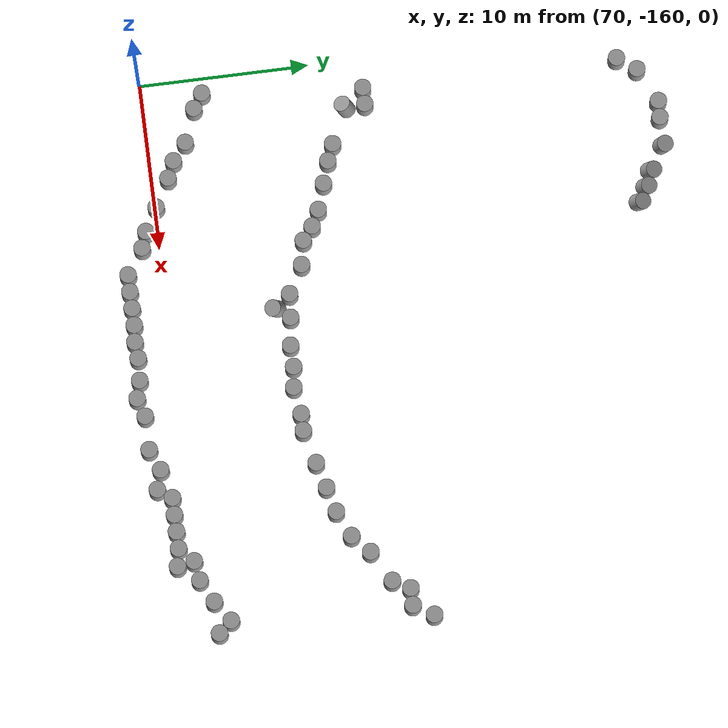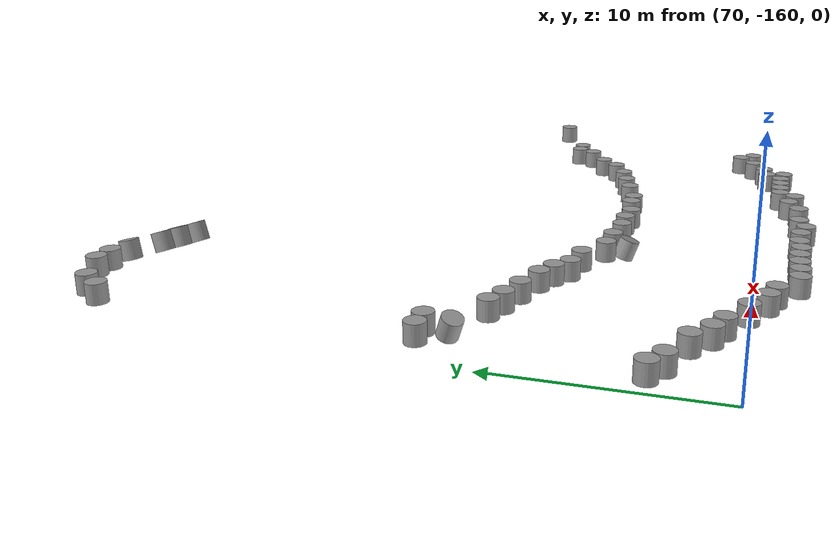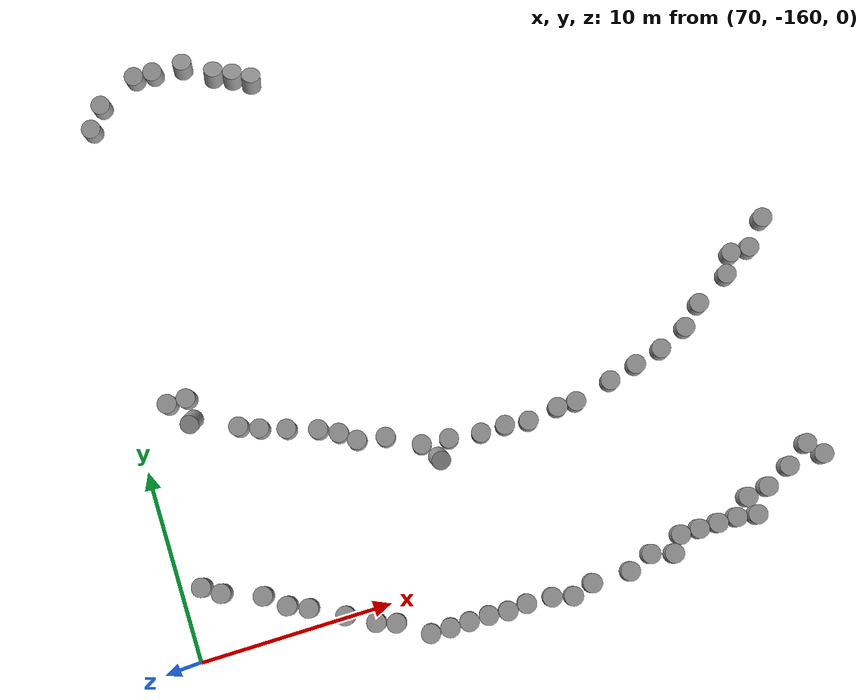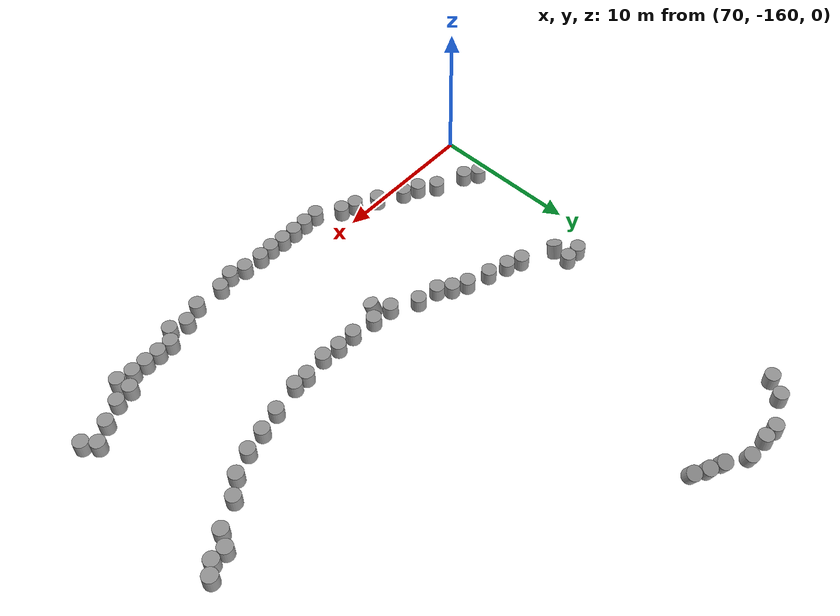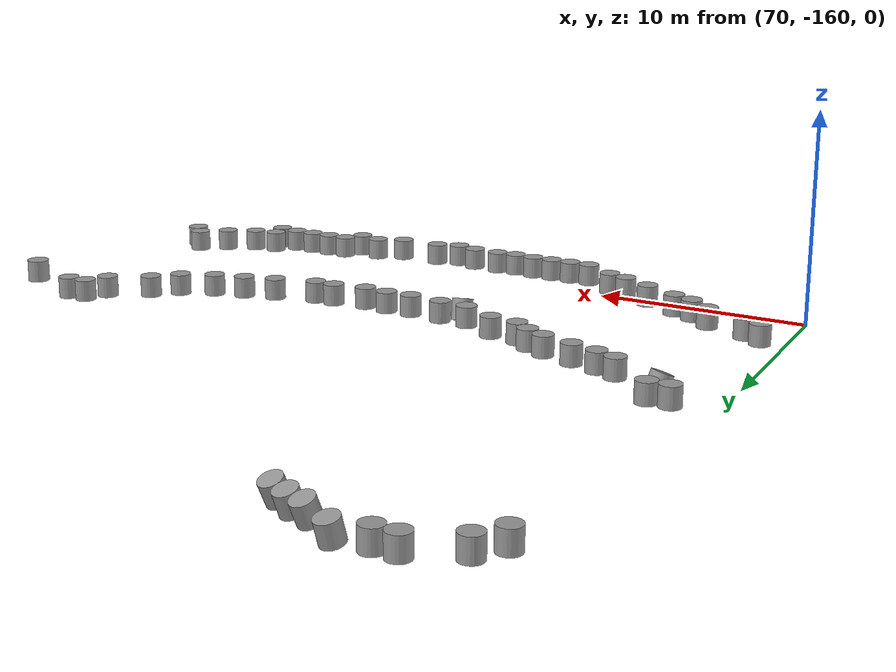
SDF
<sdf version="1.7">
 <world name="default">
  <model name="unit_cylinder_85_clone_244_clone_869">
   <pose>103.887 -146.875 1.45093 -0.001001 -6.3e-05 0.077577</pose>
   <link name="link">
    <inertial>
     <mass>1</mass>
     <inertia><ixx>0.145833</ixx><ixy>0</ixy><ixz>0</ixz><iyy>0.145833</iyy><iyz>0</iyz><izz>0.125</izz></inertia>
    </inertial>
    <collision name="collision">
     <geometry><cylinder><radius>0.5</radius><length>1</length></cylinder></geometry>
    </collision>
    <visual name="visual">
     <geometry><cylinder><radius>0.5</radius><length>1</length></cylinder></geometry>
     <material>
      <script><name>Gazebo/Grey</name><uri>file://media/materials/scripts/gazebo.material</uri></script>
     </material>
    </visual>
   </link>
  </model>
  <model name="unit_cylinder_85_clone_244_clone_871">
   <pose>103.002 -147.998 0.451267 -2.9e-05 -2.7e-05 -0.004593</pose>
   <link name="link">
    <inertial>
     <mass>1</mass>
     <inertia><ixx>0.145833</ixx><ixy>0</ixy><ixz>0</ixz><iyy>0.145833</iyy><iyz>0</iyz><izz>0.125</izz></inertia>
    </inertial>
    <collision name="collision">
     <geometry><cylinder><radius>0.5</radius><length>1</length></cylinder></geometry>
    </collision>
    <visual name="visual">
     <geometry><cylinder><radius>0.5</radius><length>1</length></cylinder></geometry>
     <material>
      <script><name>Gazebo/Grey</name><uri>file://media/materials/scripts/gazebo.material</uri></script>
     </material>
    </visual>
   </link>
  </model>
  <model name="unit_cylinder_85_clone_244_clone_872">
   <pose>102.002 -148 0.450004 -2e-06 -2.7e-05 0.000412</pose>
   <link name="link">
    <inertial>
     <mass>1</mass>
     <inertia><ixx>0.145833</ixx><ixy>0</ixy><ixz>0</ixz><iyy>0.145833</iyy><iyz>0</iyz><izz>0.125</izz></inertia>
    </inertial>
    <collision name="collision">
     <geometry><cylinder><radius>0.5</radius><length>1</length></cylinder></geometry>
    </collision>
    <visual name="visual">
     <geometry><cylinder><radius>0.5</radius><length>1</length></cylinder></geometry>
     <material>
      <script><name>Gazebo/Grey</name><uri>file://media/materials/scripts/gazebo.material</uri></script>
     </material>
    </visual>
   </link>
  </model>
  <model name="unit_cylinder_85_clone_244_clone_873">
   <pose>101.434 -148.999 0.450763 -0.001235 -0.000899 0.000613</pose>
   <link name="link">
    <inertial>
     <mass>1</mass>
     <inertia><ixx>0.145833</ixx><ixy>0</ixy><ixz>0</ixz><iyy>0.145833</iyy><iyz>0</iyz><izz>0.125</izz></inertia>
    </inertial>
    <collision name="collision">
     <geometry><cylinder><radius>0.5</radius><length>1</length></cylinder></geometry>
    </collision>
    <visual name="visual">
     <geometry><cylinder><radius>0.5</radius><length>1</length></cylinder></geometry>
     <material>
      <script><name>Gazebo/Grey</name><uri>file://media/materials/scripts/gazebo.material</uri></script>
     </material>
    </visual>
   </link>
  </model>
  <model name="unit_cylinder_85_clone_244_clone_874">
   <pose>99.5975 -150.025 0.45069 -0.001188 -0.000704 0.00096</pose>
   <link name="link">
    <inertial>
     <mass>1</mass>
     <inertia><ixx>0.145833</ixx><ixy>0</ixy><ixz>0</ixz><iyy>0.145833</iyy><iyz>0</iyz><izz>0.125</izz></inertia>
    </inertial>
    <collision name="collision">
     <geometry><cylinder><radius>0.5</radius><length>1</length></cylinder></geometry>
    </collision>
    <visual name="visual">
     <geometry><cylinder><radius>0.5</radius><length>1</length></cylinder></geometry>
     <material>
      <script><name>Gazebo/Grey</name><uri>file://media/materials/scripts/gazebo.material</uri></script>
     </material>
    </visual>
   </link>
  </model>
  <model name="unit_cylinder_85_clone_244_clone_875">
   <pose>98.5288 -150.999 0.45101 -0.00174 -0.001029 0.000534</pose>
   <link name="link">
    <inertial>
     <mass>1</mass>
     <inertia><ixx>0.145833</ixx><ixy>0</ixy><ixz>0</ixz><iyy>0.145833</iyy><iyz>0</iyz><izz>0.125</izz></inertia>
    </inertial>
    <collision name="collision">
     <geometry><cylinder><radius>0.5</radius><length>1</length></cylinder></geometry>
    </collision>
    <visual name="visual">
     <geometry><cylinder><radius>0.5</radius><length>1</length></cylinder></geometry>
     <material>
      <script><name>Gazebo/Grey</name><uri>file://media/materials/scripts/gazebo.material</uri></script>
     </material>
    </visual>
   </link>
  </model>
  <model name="unit_cylinder_85_clone_244_clone_876">
   <pose>96.992 -151.696 0.450783 -0.001368 -0.000791 0.001602</pose>
   <link name="link">
    <inertial>
     <mass>1</mass>
     <inertia><ixx>0.145833</ixx><ixy>0</ixy><ixz>0</ixz><iyy>0.145833</iyy><iyz>0</iyz><izz>0.125</izz></inertia>
    </inertial>
    <collision name="collision">
     <geometry><cylinder><radius>0.5</radius><length>1</length></cylinder></geometry>
    </collision>
    <visual name="visual">
     <geometry><cylinder><radius>0.5</radius><length>1</length></cylinder></geometry>
     <material>
      <script><name>Gazebo/Grey</name><uri>file://media/materials/scripts/gazebo.material</uri></script>
     </material>
    </visual>
   </link>
  </model>
  <model name="unit_cylinder_85_clone_244_clone_896">
   <pose>103.225 -159.247 0.450878 0.000282 0.000134 0.057715</pose>
   <link name="link">
    <inertial>
     <mass>1</mass>
     <inertia><ixx>0.145833</ixx><ixy>0</ixy><ixz>0</ixz><iyy>0.145833</iyy><iyz>0</iyz><izz>0.125</izz></inertia>
    </inertial>
    <collision name="collision">
     <geometry><cylinder><radius>0.5</radius><length>1</length></cylinder></geometry>
    </collision>
    <visual name="visual">
     <geometry><cylinder><radius>0.5</radius><length>1</length></cylinder></geometry>
     <material>
      <script><name>Gazebo/Grey</name><uri>file://media/materials/scripts/gazebo.material</uri></script>
     </material>
    </visual>
   </link>
  </model>
  <model name="unit_cylinder_85_clone_244_clone_897">
   <pose>102.567 -158.494 0.451195 0.00027 0.000116 0.012369</pose>
   <link name="link">
    <inertial>
     <mass>1</mass>
     <inertia><ixx>0.145833</ixx><ixy>0</ixy><ixz>0</ixz><iyy>0.145833</iyy><iyz>0</iyz><izz>0.125</izz></inertia>
    </inertial>
    <collision name="collision">
     <geometry><cylinder><radius>0.5</radius><length>1</length></cylinder></geometry>
    </collision>
    <visual name="visual">
     <geometry><cylinder><radius>0.5</radius><length>1</length></cylinder></geometry>
     <material>
      <script><name>Gazebo/Grey</name><uri>file://media/materials/scripts/gazebo.material</uri></script>
     </material>
    </visual>
   </link>
  </model>
  <model name="unit_cylinder_85_clone_244_clone_898">
   <pose>101.345 -159.327 0.45114 0.000267 0.000137 0.000501</pose>
   <link name="link">
    <inertial>
     <mass>1</mass>
     <inertia><ixx>0.145833</ixx><ixy>0</ixy><ixz>0</ixz><iyy>0.145833</iyy><iyz>0</iyz><izz>0.125</izz></inertia>
    </inertial>
    <collision name="collision">
     <geometry><cylinder><radius>0.5</radius><length>1</length></cylinder></geometry>
    </collision>
    <visual name="visual">
     <geometry><cylinder><radius>0.5</radius><length>1</length></cylinder></geometry>
     <material>
      <script><name>Gazebo/Grey</name><uri>file://media/materials/scripts/gazebo.material</uri></script>
     </material>
    </visual>
   </link>
  </model>
  <model name="unit_cylinder_85_clone_244_clone_899">
   <pose>100 -160 0.451136 0.000261 0.000136 0.000501</pose>
   <link name="link">
    <inertial>
     <mass>1</mass>
     <inertia><ixx>0.145833</ixx><ixy>0</ixy><ixz>0</ixz><iyy>0.145833</iyy><iyz>0</iyz><izz>0.125</izz></inertia>
    </inertial>
    <collision name="collision">
     <geometry><cylinder><radius>0.5</radius><length>1</length></cylinder></geometry>
    </collision>
    <visual name="visual">
     <geometry><cylinder><radius>0.5</radius><length>1</length></cylinder></geometry>
     <material>
      <script><name>Gazebo/Grey</name><uri>file://media/materials/scripts/gazebo.material</uri></script>
     </material>
    </visual>
   </link>
  </model>
  <model name="unit_cylinder_85_clone_244_clone_900">
   <pose>99.0442 -161.182 0.45097 0.00022 7.5e-05 -0.016009</pose>
   <link name="link">
    <inertial>
     <mass>1</mass>
     <inertia><ixx>0.145833</ixx><ixy>0</ixy><ixz>0</ixz><iyy>0.145833</iyy><iyz>0</iyz><izz>0.125</izz></inertia>
    </inertial>
    <collision name="collision">
     <geometry><cylinder><radius>0.5</radius><length>1</length></cylinder></geometry>
    </collision>
    <visual name="visual">
     <geometry><cylinder><radius>0.5</radius><length>1</length></cylinder></geometry>
     <material>
      <script><name>Gazebo/Grey</name><uri>file://media/materials/scripts/gazebo.material</uri></script>
     </material>
    </visual>
   </link>
  </model>
  <model name="unit_cylinder_85_clone_244_clone_901">
   <pose>97.9968 -161 0.451075 0.00026 7e-05 0.000965</pose>
   <link name="link">
    <inertial>
     <mass>1</mass>
     <inertia><ixx>0.145833</ixx><ixy>0</ixy><ixz>0</ixz><iyy>0.145833</iyy><iyz>0</iyz><izz>0.125</izz></inertia>
    </inertial>
    <collision name="collision">
     <geometry><cylinder><radius>0.5</radius><length>1</length></cylinder></geometry>
    </collision>
    <visual name="visual">
     <geometry><cylinder><radius>0.5</radius><length>1</length></cylinder></geometry>
     <material>
      <script><name>Gazebo/Grey</name><uri>file://media/materials/scripts/gazebo.material</uri></script>
     </material>
    </visual>
   </link>
  </model>
  <model name="unit_cylinder_85_clone_244_clone_902">
   <pose>96.9956 -161 0.451143 0.000271 6.9e-05 1.4e-05</pose>
   <link name="link">
    <inertial>
     <mass>1</mass>
     <inertia><ixx>0.145833</ixx><ixy>0</ixy><ixz>0</ixz><iyy>0.145833</iyy><iyz>0</iyz><izz>0.125</izz></inertia>
    </inertial>
    <collision name="collision">
     <geometry><cylinder><radius>0.5</radius><length>1</length></cylinder></geometry>
    </collision>
    <visual name="visual">
     <geometry><cylinder><radius>0.5</radius><length>1</length></cylinder></geometry>
     <material>
      <script><name>Gazebo/Grey</name><uri>file://media/materials/scripts/gazebo.material</uri></script>
     </material>
    </visual>
   </link>
  </model>
  <model name="unit_cylinder_85_clone_244_clone_903">
   <pose>95.9953 -160.999 0.451201 0.000232 5.2e-05 0.000434</pose>
   <link name="link">
    <inertial>
     <mass>1</mass>
     <inertia><ixx>0.145833</ixx><ixy>0</ixy><ixz>0</ixz><iyy>0.145833</iyy><iyz>0</iyz><izz>0.125</izz></inertia>
    </inertial>
    <collision name="collision">
     <geometry><cylinder><radius>0.5</radius><length>1</length></cylinder></geometry>
    </collision>
    <visual name="visual">
     <geometry><cylinder><radius>0.5</radius><length>1</length></cylinder></geometry>
     <material>
      <script><name>Gazebo/Grey</name><uri>file://media/materials/scripts/gazebo.material</uri></script>
     </material>
    </visual>
   </link>
  </model>
  <model name="unit_cylinder_85_clone_244_clone_904">
   <pose>94.9947 -160.998 0.45125 0.0002 3e-05 0.034548</pose>
   <link name="link">
    <inertial>
     <mass>1</mass>
     <inertia><ixx>0.145833</ixx><ixy>0</ixy><ixz>0</ixz><iyy>0.145833</iyy><iyz>0</iyz><izz>0.125</izz></inertia>
    </inertial>
    <collision name="collision">
     <geometry><cylinder><radius>0.5</radius><length>1</length></cylinder></geometry>
    </collision>
    <visual name="visual">
     <geometry><cylinder><radius>0.5</radius><length>1</length></cylinder></geometry>
     <material>
      <script><name>Gazebo/Grey</name><uri>file://media/materials/scripts/gazebo.material</uri></script>
     </material>
    </visual>
   </link>
  </model>
  <model name="unit_cylinder_85_clone_244_clone_905">
   <pose>94.3993 -161.805 0.451105 0.00024 5.2e-05 0.005053</pose>
   <link name="link">
    <inertial>
     <mass>1</mass>
     <inertia><ixx>0.145833</ixx><ixy>0</ixy><ixz>0</ixz><iyy>0.145833</iyy><iyz>0</iyz><izz>0.125</izz></inertia>
    </inertial>
    <collision name="collision">
     <geometry><cylinder><radius>0.5</radius><length>1</length></cylinder></geometry>
    </collision>
    <visual name="visual">
     <geometry><cylinder><radius>0.5</radius><length>1</length></cylinder></geometry>
     <material>
      <script><name>Gazebo/Grey</name><uri>file://media/materials/scripts/gazebo.material</uri></script>
     </material>
    </visual>
   </link>
  </model>
  <model name="unit_cylinder_85_clone_244_clone_906">
   <pose>98.8422 -160.192 0.451228 0.000268 7.7e-05 -0.028146</pose>
   <link name="link">
    <inertial>
     <mass>1</mass>
     <inertia><ixx>0.145833</ixx><ixy>0</ixy><ixz>0</ixz><iyy>0.145833</iyy><iyz>0</iyz><izz>0.125</izz></inertia>
    </inertial>
    <collision name="collision">
     <geometry><cylinder><radius>0.5</radius><length>1</length></cylinder></geometry>
    </collision>
    <visual name="visual">
     <geometry><cylinder><radius>0.5</radius><length>1</length></cylinder></geometry>
     <material>
      <script><name>Gazebo/Grey</name><uri>file://media/materials/scripts/gazebo.material</uri></script>
     </material>
    </visual>
   </link>
  </model>
  <model name="unit_cylinder_85_clone_244_clone_907">
   <pose>93.2621 -161.48 0.451235 0.000192 3.7e-05 0.000522</pose>
   <link name="link">
    <inertial>
     <mass>1</mass>
     <inertia><ixx>0.145833</ixx><ixy>0</ixy><ixz>0</ixz><iyy>0.145833</iyy><iyz>0</iyz><izz>0.125</izz></inertia>
    </inertial>
    <collision name="collision">
     <geometry><cylinder><radius>0.5</radius><length>1</length></cylinder></geometry>
    </collision>
    <visual name="visual">
     <geometry><cylinder><radius>0.5</radius><length>1</length></cylinder></geometry>
     <material>
      <script><name>Gazebo/Grey</name><uri>file://media/materials/scripts/gazebo.material</uri></script>
     </material>
    </visual>
   </link>
  </model>
  <model name="unit_cylinder_85_clone_244_clone_908">
   <pose>92 -162 0.451181 0.000192 4.3e-05 0.000546</pose>
   <link name="link">
    <inertial>
     <mass>1</mass>
     <inertia><ixx>0.145833</ixx><ixy>0</ixy><ixz>0</ixz><iyy>0.145833</iyy><iyz>0</iyz><izz>0.125</izz></inertia>
    </inertial>
    <collision name="collision">
     <geometry><cylinder><radius>0.5</radius><length>1</length></cylinder></geometry>
    </collision>
    <visual name="visual">
     <geometry><cylinder><radius>0.5</radius><length>1</length></cylinder></geometry>
     <material>
      <script><name>Gazebo/Grey</name><uri>file://media/materials/scripts/gazebo.material</uri></script>
     </material>
    </visual>
   </link>
  </model>
  <model name="unit_cylinder_85_clone_244_clone_909">
   <pose>95.5108 -152.084 0.450705 -0.001364 -0.000359 0.000158</pose>
   <link name="link">
    <inertial>
     <mass>1</mass>
     <inertia><ixx>0.145833</ixx><ixy>0</ixy><ixz>0</ixz><iyy>0.145833</iyy><iyz>0</iyz><izz>0.125</izz></inertia>
    </inertial>
    <collision name="collision">
     <geometry><cylinder><radius>0.5</radius><length>1</length></cylinder></geometry>
    </collision>
    <visual name="visual">
     <geometry><cylinder><radius>0.5</radius><length>1</length></cylinder></geometry>
     <material>
      <script><name>Gazebo/Grey</name><uri>file://media/materials/scripts/gazebo.material</uri></script>
     </material>
    </visual>
   </link>
  </model>
  <model name="unit_cylinder_85_clone_244_clone_910">
   <pose>93.9997 -152.495 0.450708 -0.001388 -0.000363 0.000316</pose>
   <link name="link">
    <inertial>
     <mass>1</mass>
     <inertia><ixx>0.145833</ixx><ixy>0</ixy><ixz>0</ixz><iyy>0.145833</iyy><iyz>0</iyz><izz>0.125</izz></inertia>
    </inertial>
    <collision name="collision">
     <geometry><cylinder><radius>0.5</radius><length>1</length></cylinder></geometry>
    </collision>
    <visual name="visual">
     <geometry><cylinder><radius>0.5</radius><length>1</length></cylinder></geometry>
     <material>
      <script><name>Gazebo/Grey</name><uri>file://media/materials/scripts/gazebo.material</uri></script>
     </material>
    </visual>
   </link>
  </model>
  <model name="unit_cylinder_85_clone_244_clone_911">
   <pose>92.0025 -152.999 0.450767 -0.001536 -1.2e-05 0.00254</pose>
   <link name="link">
    <inertial>
     <mass>1</mass>
     <inertia><ixx>0.145833</ixx><ixy>0</ixy><ixz>0</ixz><iyy>0.145833</iyy><iyz>0</iyz><izz>0.125</izz></inertia>
    </inertial>
    <collision name="collision">
     <geometry><cylinder><radius>0.5</radius><length>1</length></cylinder></geometry>
    </collision>
    <visual name="visual">
     <geometry><cylinder><radius>0.5</radius><length>1</length></cylinder></geometry>
     <material>
      <script><name>Gazebo/Grey</name><uri>file://media/materials/scripts/gazebo.material</uri></script>
     </material>
    </visual>
   </link>
  </model>
  <model name="unit_cylinder_85_clone_244_clone_912">
   <pose>91.0025 -153 0.45001 1e-06 -2.1e-05 0.001145</pose>
   <link name="link">
    <inertial>
     <mass>1</mass>
     <inertia><ixx>0.145833</ixx><ixy>0</ixy><ixz>0</ixz><iyy>0.145833</iyy><iyz>0</iyz><izz>0.125</izz></inertia>
    </inertial>
    <collision name="collision">
     <geometry><cylinder><radius>0.5</radius><length>1</length></cylinder></geometry>
    </collision>
    <visual name="visual">
     <geometry><cylinder><radius>0.5</radius><length>1</length></cylinder></geometry>
     <material>
      <script><name>Gazebo/Grey</name><uri>file://media/materials/scripts/gazebo.material</uri></script>
     </material>
    </visual>
   </link>
  </model>
  <model name="unit_cylinder_85_clone_244_clone_913">
   <pose>89.3838 -153.232 0.450665 -0.001326 0.000111 0.000351</pose>
   <link name="link">
    <inertial>
     <mass>1</mass>
     <inertia><ixx>0.145833</ixx><ixy>0</ixy><ixz>0</ixz><iyy>0.145833</iyy><iyz>0</iyz><izz>0.125</izz></inertia>
    </inertial>
    <collision name="collision">
     <geometry><cylinder><radius>0.5</radius><length>1</length></cylinder></geometry>
    </collision>
    <visual name="visual">
     <geometry><cylinder><radius>0.5</radius><length>1</length></cylinder></geometry>
     <material>
      <script><name>Gazebo/Grey</name><uri>file://media/materials/scripts/gazebo.material</uri></script>
     </material>
    </visual>
   </link>
  </model>
  <model name="unit_cylinder_85_clone_244_clone_914">
   <pose>88.1648 -153.092 0.450643 -0.001277 0.000162 -0.000866</pose>
   <link name="link">
    <inertial>
     <mass>1</mass>
     <inertia><ixx>0.145833</ixx><ixy>0</ixy><ixz>0</ixz><iyy>0.145833</iyy><iyz>0</iyz><izz>0.125</izz></inertia>
    </inertial>
    <collision name="collision">
     <geometry><cylinder><radius>0.5</radius><length>1</length></cylinder></geometry>
    </collision>
    <visual name="visual">
     <geometry><cylinder><radius>0.5</radius><length>1</length></cylinder></geometry>
     <material>
      <script><name>Gazebo/Grey</name><uri>file://media/materials/scripts/gazebo.material</uri></script>
     </material>
    </visual>
   </link>
  </model>
  <model name="unit_cylinder_85_clone_244_clone_915">
   <pose>86.8815 -153.109 0.450724 -0.001457 0.000121 0.000505</pose>
   <link name="link">
    <inertial>
     <mass>1</mass>
     <inertia><ixx>0.145833</ixx><ixy>0</ixy><ixz>0</ixz><iyy>0.145833</iyy><iyz>0</iyz><izz>0.125</izz></inertia>
    </inertial>
    <collision name="collision">
     <geometry><cylinder><radius>0.5</radius><length>1</length></cylinder></geometry>
    </collision>
    <visual name="visual">
     <geometry><cylinder><radius>0.5</radius><length>1</length></cylinder></geometry>
     <material>
      <script><name>Gazebo/Grey</name><uri>file://media/materials/scripts/gazebo.material</uri></script>
     </material>
    </visual>
   </link>
  </model>
  <model name="unit_cylinder_85_clone_244_clone_916">
   <pose>85.2285 -152.902 0.450677 -0.001345 0.000166 0.039174</pose>
   <link name="link">
    <inertial>
     <mass>1</mass>
     <inertia><ixx>0.145833</ixx><ixy>0</ixy><ixz>0</ixz><iyy>0.145833</iyy><iyz>0</iyz><izz>0.125</izz></inertia>
    </inertial>
    <collision name="collision">
     <geometry><cylinder><radius>0.5</radius><length>1</length></cylinder></geometry>
    </collision>
    <visual name="visual">
     <geometry><cylinder><radius>0.5</radius><length>1</length></cylinder></geometry>
     <material>
      <script><name>Gazebo/Grey</name><uri>file://media/materials/scripts/gazebo.material</uri></script>
     </material>
    </visual>
   </link>
  </model>
  <model name="unit_cylinder_85_clone_244_clone_917">
   <pose>84.4796 -153.707 0.390486 0.335661 0.093016 0.057942</pose>
   <link name="link">
    <inertial>
     <mass>1</mass>
     <inertia><ixx>0.145833</ixx><ixy>0</ixy><ixz>0</ixz><iyy>0.145833</iyy><iyz>0</iyz><izz>0.125</izz></inertia>
    </inertial>
    <collision name="collision">
     <geometry><cylinder><radius>0.5</radius><length>1</length></cylinder></geometry>
    </collision>
    <visual name="visual">
     <geometry><cylinder><radius>0.5</radius><length>1</length></cylinder></geometry>
     <material>
      <script><name>Gazebo/Grey</name><uri>file://media/materials/scripts/gazebo.material</uri></script>
     </material>
    </visual>
   </link>
  </model>
  <model name="unit_cylinder_85_clone_244_clone_918">
   <pose>83.8172 -152.785 0.450677 -0.001352 8e-05 -0.028013</pose>
   <link name="link">
    <inertial>
     <mass>1</mass>
     <inertia><ixx>0.145833</ixx><ixy>0</ixy><ixz>0</ixz><iyy>0.145833</iyy><iyz>0</iyz><izz>0.125</izz></inertia>
    </inertial>
    <collision name="collision">
     <geometry><cylinder><radius>0.5</radius><length>1</length></cylinder></geometry>
    </collision>
    <visual name="visual">
     <geometry><cylinder><radius>0.5</radius><length>1</length></cylinder></geometry>
     <material>
      <script><name>Gazebo/Grey</name><uri>file://media/materials/scripts/gazebo.material</uri></script>
     </material>
    </visual>
   </link>
  </model>
  <model name="unit_cylinder_85_clone_244_clone_919">
   <pose>90 -162 0.451237 0.000179 1e-06 0.000501</pose>
   <link name="link">
    <inertial>
     <mass>1</mass>
     <inertia><ixx>0.145833</ixx><ixy>0</ixy><ixz>0</ixz><iyy>0.145833</iyy><iyz>0</iyz><izz>0.125</izz></inertia>
    </inertial>
    <collision name="collision">
     <geometry><cylinder><radius>0.5</radius><length>1</length></cylinder></geometry>
    </collision>
    <visual name="visual">
     <geometry><cylinder><radius>0.5</radius><length>1</length></cylinder></geometry>
     <material>
      <script><name>Gazebo/Grey</name><uri>file://media/materials/scripts/gazebo.material</uri></script>
     </material>
    </visual>
   </link>
  </model>
  <model name="unit_cylinder_85_clone_244_clone_920">
   <pose>88.8943 -162.336 0.451183 0.000173 8e-06 0.000501</pose>
   <link name="link">
    <inertial>
     <mass>1</mass>
     <inertia><ixx>0.145833</ixx><ixy>0</ixy><ixz>0</ixz><iyy>0.145833</iyy><iyz>0</iyz><izz>0.125</izz></inertia>
    </inertial>
    <collision name="collision">
     <geometry><cylinder><radius>0.5</radius><length>1</length></cylinder></geometry>
    </collision>
    <visual name="visual">
     <geometry><cylinder><radius>0.5</radius><length>1</length></cylinder></geometry>
     <material>
      <script><name>Gazebo/Grey</name><uri>file://media/materials/scripts/gazebo.material</uri></script>
     </material>
    </visual>
   </link>
  </model>
  <model name="unit_cylinder_85_clone_244_clone_921">
   <pose>87.8492 -162.067 0.451239 0.000179 -4e-06 0.000502</pose>
   <link name="link">
    <inertial>
     <mass>1</mass>
     <inertia><ixx>0.145833</ixx><ixy>0</ixy><ixz>0</ixz><iyy>0.145833</iyy><iyz>0</iyz><izz>0.125</izz></inertia>
    </inertial>
    <collision name="collision">
     <geometry><cylinder><radius>0.5</radius><length>1</length></cylinder></geometry>
    </collision>
    <visual name="visual">
     <geometry><cylinder><radius>0.5</radius><length>1</length></cylinder></geometry>
     <material>
      <script><name>Gazebo/Grey</name><uri>file://media/materials/scripts/gazebo.material</uri></script>
     </material>
    </visual>
   </link>
  </model>
  <model name="unit_cylinder_85_clone_244_clone_922">
   <pose>86.5302 -161.999 0.451231 0.000114 -3e-06 -0.007777</pose>
   <link name="link">
    <inertial>
     <mass>1</mass>
     <inertia><ixx>0.145833</ixx><ixy>0</ixy><ixz>0</ixz><iyy>0.145833</iyy><iyz>0</iyz><izz>0.125</izz></inertia>
    </inertial>
    <collision name="collision">
     <geometry><cylinder><radius>0.5</radius><length>1</length></cylinder></geometry>
    </collision>
    <visual name="visual">
     <geometry><cylinder><radius>0.5</radius><length>1</length></cylinder></geometry>
     <material>
      <script><name>Gazebo/Grey</name><uri>file://media/materials/scripts/gazebo.material</uri></script>
     </material>
    </visual>
   </link>
  </model>
  <model name="unit_cylinder_85_clone_244_clone_923">
   <pose>85.5322 -162.071 0.451235 8.2e-05 1e-06 -0.008993</pose>
   <link name="link">
    <inertial>
     <mass>1</mass>
     <inertia><ixx>0.145833</ixx><ixy>0</ixy><ixz>0</ixz><iyy>0.145833</iyy><iyz>0</iyz><izz>0.125</izz></inertia>
    </inertial>
    <collision name="collision">
     <geometry><cylinder><radius>0.5</radius><length>1</length></cylinder></geometry>
    </collision>
    <visual name="visual">
     <geometry><cylinder><radius>0.5</radius><length>1</length></cylinder></geometry>
     <material>
      <script><name>Gazebo/Grey</name><uri>file://media/materials/scripts/gazebo.material</uri></script>
     </material>
    </visual>
   </link>
  </model>
  <model name="unit_cylinder_85_clone_244_clone_924">
   <pose>84.5337 -161.996 0.451234 7.9e-05 -6e-06 0.024148</pose>
   <link name="link">
    <inertial>
     <mass>1</mass>
     <inertia><ixx>0.145833</ixx><ixy>0</ixy><ixz>0</ixz><iyy>0.145833</iyy><iyz>0</iyz><izz>0.125</izz></inertia>
    </inertial>
    <collision name="collision">
     <geometry><cylinder><radius>0.5</radius><length>1</length></cylinder></geometry>
    </collision>
    <visual name="visual">
     <geometry><cylinder><radius>0.5</radius><length>1</length></cylinder></geometry>
     <material>
      <script><name>Gazebo/Grey</name><uri>file://media/materials/scripts/gazebo.material</uri></script>
     </material>
    </visual>
   </link>
  </model>
  <model name="unit_cylinder_85_clone_244_clone_925">
   <pose>83.515 -162 0.451232 7.8e-05 -3e-06 0.016278</pose>
   <link name="link">
    <inertial>
     <mass>1</mass>
     <inertia><ixx>0.145833</ixx><ixy>0</ixy><ixz>0</ixz><iyy>0.145833</iyy><iyz>0</iyz><izz>0.125</izz></inertia>
    </inertial>
    <collision name="collision">
     <geometry><cylinder><radius>0.5</radius><length>1</length></cylinder></geometry>
    </collision>
    <visual name="visual">
     <geometry><cylinder><radius>0.5</radius><length>1</length></cylinder></geometry>
     <material>
      <script><name>Gazebo/Grey</name><uri>file://media/materials/scripts/gazebo.material</uri></script>
     </material>
    </visual>
   </link>
  </model>
  <model name="unit_cylinder_85_clone_244_clone_926">
   <pose>82.515 -162.012 0.451227 7.4e-05 -2e-06 -0.011324</pose>
   <link name="link">
    <inertial>
     <mass>1</mass>
     <inertia><ixx>0.145833</ixx><ixy>0</ixy><ixz>0</ixz><iyy>0.145833</iyy><iyz>0</iyz><izz>0.125</izz></inertia>
    </inertial>
    <collision name="collision">
     <geometry><cylinder><radius>0.5</radius><length>1</length></cylinder></geometry>
    </collision>
    <visual name="visual">
     <geometry><cylinder><radius>0.5</radius><length>1</length></cylinder></geometry>
     <material>
      <script><name>Gazebo/Grey</name><uri>file://media/materials/scripts/gazebo.material</uri></script>
     </material>
    </visual>
   </link>
  </model>
  <model name="unit_cylinder_85_clone_244_clone_927">
   <pose>81.4983 -162 0.45123 4.7e-05 -8e-06 0.000196</pose>
   <link name="link">
    <inertial>
     <mass>1</mass>
     <inertia><ixx>0.145833</ixx><ixy>0</ixy><ixz>0</ixz><iyy>0.145833</iyy><iyz>0</iyz><izz>0.125</izz></inertia>
    </inertial>
    <collision name="collision">
     <geometry><cylinder><radius>0.5</radius><length>1</length></cylinder></geometry>
    </collision>
    <visual name="visual">
     <geometry><cylinder><radius>0.5</radius><length>1</length></cylinder></geometry>
     <material>
      <script><name>Gazebo/Grey</name><uri>file://media/materials/scripts/gazebo.material</uri></script>
     </material>
    </visual>
   </link>
  </model>
  <model name="unit_cylinder_85_clone_244_clone_928">
   <pose>80 -161 0.451259 6.4e-05 -1.7e-05 0.000501</pose>
   <link name="link">
    <inertial>
     <mass>1</mass>
     <inertia><ixx>0.145833</ixx><ixy>0</ixy><ixz>0</ixz><iyy>0.145833</iyy><iyz>0</iyz><izz>0.125</izz></inertia>
    </inertial>
    <collision name="collision">
     <geometry><cylinder><radius>0.5</radius><length>1</length></cylinder></geometry>
    </collision>
    <visual name="visual">
     <geometry><cylinder><radius>0.5</radius><length>1</length></cylinder></geometry>
     <material>
      <script><name>Gazebo/Grey</name><uri>file://media/materials/scripts/gazebo.material</uri></script>
     </material>
    </visual>
   </link>
  </model>
  <model name="unit_cylinder_85_clone_244_clone_929">
   <pose>79.0366 -160.668 0.451277 5.2e-05 -1e-05 0.0005</pose>
   <link name="link">
    <inertial>
     <mass>1</mass>
     <inertia><ixx>0.145833</ixx><ixy>0</ixy><ixz>0</ixz><iyy>0.145833</iyy><iyz>0</iyz><izz>0.125</izz></inertia>
    </inertial>
    <collision name="collision">
     <geometry><cylinder><radius>0.5</radius><length>1</length></cylinder></geometry>
    </collision>
    <visual name="visual">
     <geometry><cylinder><radius>0.5</radius><length>1</length></cylinder></geometry>
     <material>
      <script><name>Gazebo/Grey</name><uri>file://media/materials/scripts/gazebo.material</uri></script>
     </material>
    </visual>
   </link>
  </model>
  <model name="unit_cylinder_85_clone_244_clone_930">
   <pose>77.6475 -159.897 0.451287 2.6e-05 -1e-05 0.000495</pose>
   <link name="link">
    <inertial>
     <mass>1</mass>
     <inertia><ixx>0.145833</ixx><ixy>0</ixy><ixz>0</ixz><iyy>0.145833</iyy><iyz>0</iyz><izz>0.125</izz></inertia>
    </inertial>
    <collision name="collision">
     <geometry><cylinder><radius>0.5</radius><length>1</length></cylinder></geometry>
    </collision>
    <visual name="visual">
     <geometry><cylinder><radius>0.5</radius><length>1</length></cylinder></geometry>
     <material>
      <script><name>Gazebo/Grey</name><uri>file://media/materials/scripts/gazebo.material</uri></script>
     </material>
    </visual>
   </link>
  </model>
  <model name="unit_cylinder_85_clone_244_clone_931">
   <pose>76 -159 0.451294 -1.1e-05 7e-06 0.000501</pose>
   <link name="link">
    <inertial>
     <mass>1</mass>
     <inertia><ixx>0.145833</ixx><ixy>0</ixy><ixz>0</ixz><iyy>0.145833</iyy><iyz>0</iyz><izz>0.125</izz></inertia>
    </inertial>
    <collision name="collision">
     <geometry><cylinder><radius>0.5</radius><length>1</length></cylinder></geometry>
    </collision>
    <visual name="visual">
     <geometry><cylinder><radius>0.5</radius><length>1</length></cylinder></geometry>
     <material>
      <script><name>Gazebo/Grey</name><uri>file://media/materials/scripts/gazebo.material</uri></script>
     </material>
    </visual>
   </link>
  </model>
  <model name="unit_cylinder_85_clone_244_clone_932">
   <pose>75 -158.565 0.451289 -2.5e-05 1.2e-05 0.000521</pose>
   <link name="link">
    <inertial>
     <mass>1</mass>
     <inertia><ixx>0.145833</ixx><ixy>0</ixy><ixz>0</ixz><iyy>0.145833</iyy><iyz>0</iyz><izz>0.125</izz></inertia>
    </inertial>
    <collision name="collision">
     <geometry><cylinder><radius>0.5</radius><length>1</length></cylinder></geometry>
    </collision>
    <visual name="visual">
     <geometry><cylinder><radius>0.5</radius><length>1</length></cylinder></geometry>
     <material>
      <script><name>Gazebo/Grey</name><uri>file://media/materials/scripts/gazebo.material</uri></script>
     </material>
    </visual>
   </link>
  </model>
  <model name="unit_cylinder_85_clone_244_clone_933">
   <pose>73.9731 -157.745 0.451297 -3.3e-05 4.5e-05 -2.5e-05</pose>
   <link name="link">
    <inertial>
     <mass>1</mass>
     <inertia><ixx>0.145833</ixx><ixy>0</ixy><ixz>0</ixz><iyy>0.145833</iyy><iyz>0</iyz><izz>0.125</izz></inertia>
    </inertial>
    <collision name="collision">
     <geometry><cylinder><radius>0.5</radius><length>1</length></cylinder></geometry>
    </collision>
    <visual name="visual">
     <geometry><cylinder><radius>0.5</radius><length>1</length></cylinder></geometry>
     <material>
      <script><name>Gazebo/Grey</name><uri>file://media/materials/scripts/gazebo.material</uri></script>
     </material>
    </visual>
   </link>
  </model>
  <model name="unit_cylinder_85_clone_244_clone_934">
   <pose>72 -157 0.451299 -2.5e-05 2.1e-05 0.000502</pose>
   <link name="link">
    <inertial>
     <mass>1</mass>
     <inertia><ixx>0.145833</ixx><ixy>0</ixy><ixz>0</ixz><iyy>0.145833</iyy><iyz>0</iyz><izz>0.125</izz></inertia>
    </inertial>
    <collision name="collision">
     <geometry><cylinder><radius>0.5</radius><length>1</length></cylinder></geometry>
    </collision>
    <visual name="visual">
     <geometry><cylinder><radius>0.5</radius><length>1</length></cylinder></geometry>
     <material>
      <script><name>Gazebo/Grey</name><uri>file://media/materials/scripts/gazebo.material</uri></script>
     </material>
    </visual>
   </link>
  </model>
  <model name="unit_cylinder_85_clone_244_clone_935">
   <pose>71.1251 -156.424 0.451302 -2.8e-05 2e-05 0.000491</pose>
   <link name="link">
    <inertial>
     <mass>1</mass>
     <inertia><ixx>0.145833</ixx><ixy>0</ixy><ixz>0</ixz><iyy>0.145833</iyy><iyz>0</iyz><izz>0.125</izz></inertia>
    </inertial>
    <collision name="collision">
     <geometry><cylinder><radius>0.5</radius><length>1</length></cylinder></geometry>
    </collision>
    <visual name="visual">
     <geometry><cylinder><radius>0.5</radius><length>1</length></cylinder></geometry>
     <material>
      <script><name>Gazebo/Grey</name><uri>file://media/materials/scripts/gazebo.material</uri></script>
     </material>
    </visual>
   </link>
  </model>
  <model name="unit_cylinder_85_clone_244_clone_948">
   <pose>82.1709 -151.878 0.44999 0 -0 0.000553</pose>
   <link name="link">
    <inertial>
     <mass>1</mass>
     <inertia><ixx>0.145833</ixx><ixy>0</ixy><ixz>0</ixz><iyy>0.145833</iyy><iyz>0</iyz><izz>0.125</izz></inertia>
    </inertial>
    <collision name="collision">
     <geometry><cylinder><radius>0.5</radius><length>1</length></cylinder></geometry>
    </collision>
    <visual name="visual">
     <geometry><cylinder><radius>0.5</radius><length>1</length></cylinder></geometry>
     <material>
      <script><name>Gazebo/Grey</name><uri>file://media/materials/scripts/gazebo.material</uri></script>
     </material>
    </visual>
   </link>
  </model>
  <model name="unit_cylinder_85_clone_244_clone_949">
   <pose>80.733 -151.602 0.450674 -0.001069 0.000829 0.007737</pose>
   <link name="link">
    <inertial>
     <mass>1</mass>
     <inertia><ixx>0.145833</ixx><ixy>0</ixy><ixz>0</ixz><iyy>0.145833</iyy><iyz>0</iyz><izz>0.125</izz></inertia>
    </inertial>
    <collision name="collision">
     <geometry><cylinder><radius>0.5</radius><length>1</length></cylinder></geometry>
    </collision>
    <visual name="visual">
     <geometry><cylinder><radius>0.5</radius><length>1</length></cylinder></geometry>
     <material>
      <script><name>Gazebo/Grey</name><uri>file://media/materials/scripts/gazebo.material</uri></script>
     </material>
    </visual>
   </link>
  </model>
  <model name="unit_cylinder_85_clone_244_clone_950">
   <pose>79.9509 -150.979 0.450011 -1.4e-05 -1.7e-05 0.000683</pose>
   <link name="link">
    <inertial>
     <mass>1</mass>
     <inertia><ixx>0.145833</ixx><ixy>0</ixy><ixz>0</ixz><iyy>0.145833</iyy><iyz>0</iyz><izz>0.125</izz></inertia>
    </inertial>
    <collision name="collision">
     <geometry><cylinder><radius>0.5</radius><length>1</length></cylinder></geometry>
    </collision>
    <visual name="visual">
     <geometry><cylinder><radius>0.5</radius><length>1</length></cylinder></geometry>
     <material>
      <script><name>Gazebo/Grey</name><uri>file://media/materials/scripts/gazebo.material</uri></script>
     </material>
    </visual>
   </link>
  </model>
  <model name="unit_cylinder_85_clone_244_clone_951">
   <pose>79 -150.5 0.45 0 -0 0.000487</pose>
   <link name="link">
    <inertial>
     <mass>1</mass>
     <inertia><ixx>0.145833</ixx><ixy>0</ixy><ixz>0</ixz><iyy>0.145833</iyy><iyz>0</iyz><izz>0.125</izz></inertia>
    </inertial>
    <collision name="collision">
     <geometry><cylinder><radius>0.5</radius><length>1</length></cylinder></geometry>
    </collision>
    <visual name="visual">
     <geometry><cylinder><radius>0.5</radius><length>1</length></cylinder></geometry>
     <material>
      <script><name>Gazebo/Grey</name><uri>file://media/materials/scripts/gazebo.material</uri></script>
     </material>
    </visual>
   </link>
  </model>
  <model name="unit_cylinder_85_clone_244_clone_952">
   <pose>77.4675 -150 0.450006 1.3e-05 -7e-06 0.000522</pose>
   <link name="link">
    <inertial>
     <mass>1</mass>
     <inertia><ixx>0.145833</ixx><ixy>0</ixy><ixz>0</ixz><iyy>0.145833</iyy><iyz>0</iyz><izz>0.125</izz></inertia>
    </inertial>
    <collision name="collision">
     <geometry><cylinder><radius>0.5</radius><length>1</length></cylinder></geometry>
    </collision>
    <visual name="visual">
     <geometry><cylinder><radius>0.5</radius><length>1</length></cylinder></geometry>
     <material>
      <script><name>Gazebo/Grey</name><uri>file://media/materials/scripts/gazebo.material</uri></script>
     </material>
    </visual>
   </link>
  </model>
  <model name="unit_cylinder_85_clone_244_clone_953">
   <pose>76.1504 -149.574 0.450723 -0.001214 0.000786 0.000258</pose>
   <link name="link">
    <inertial>
     <mass>1</mass>
     <inertia><ixx>0.145833</ixx><ixy>0</ixy><ixz>0</ixz><iyy>0.145833</iyy><iyz>0</iyz><izz>0.125</izz></inertia>
    </inertial>
    <collision name="collision">
     <geometry><cylinder><radius>0.5</radius><length>1</length></cylinder></geometry>
    </collision>
    <visual name="visual">
     <geometry><cylinder><radius>0.5</radius><length>1</length></cylinder></geometry>
     <material>
      <script><name>Gazebo/Grey</name><uri>file://media/materials/scripts/gazebo.material</uri></script>
     </material>
    </visual>
   </link>
  </model>
  <model name="unit_cylinder_85_clone_244_clone_954">
   <pose>75.1552 -149.168 0.450936 -0.001565 0.001014 0.000424</pose>
   <link name="link">
    <inertial>
     <mass>1</mass>
     <inertia><ixx>0.145833</ixx><ixy>0</ixy><ixz>0</ixz><iyy>0.145833</iyy><iyz>0</iyz><izz>0.125</izz></inertia>
    </inertial>
    <collision name="collision">
     <geometry><cylinder><radius>0.5</radius><length>1</length></cylinder></geometry>
    </collision>
    <visual name="visual">
     <geometry><cylinder><radius>0.5</radius><length>1</length></cylinder></geometry>
     <material>
      <script><name>Gazebo/Grey</name><uri>file://media/materials/scripts/gazebo.material</uri></script>
     </material>
    </visual>
   </link>
  </model>
  <model name="unit_cylinder_85_clone_244_clone_955">
   <pose>72.8997 -148.177 0.404905 0.343988 -0.20582 -0.056038</pose>
   <link name="link">
    <inertial>
     <mass>1</mass>
     <inertia><ixx>0.145833</ixx><ixy>0</ixy><ixz>0</ixz><iyy>0.145833</iyy><iyz>0</iyz><izz>0.125</izz></inertia>
    </inertial>
    <collision name="collision">
     <geometry><cylinder><radius>0.5</radius><length>1</length></cylinder></geometry>
    </collision>
    <visual name="visual">
     <geometry><cylinder><radius>0.5</radius><length>1</length></cylinder></geometry>
     <material>
      <script><name>Gazebo/Grey</name><uri>file://media/materials/scripts/gazebo.material</uri></script>
     </material>
    </visual>
   </link>
  </model>
  <model name="unit_cylinder_85_clone_244_clone_956">
   <pose>72.9861 -146.989 0.450152 3.1e-05 0.000297 -0.022083</pose>
   <link name="link">
    <inertial>
     <mass>1</mass>
     <inertia><ixx>0.145833</ixx><ixy>0</ixy><ixz>0</ixz><iyy>0.145833</iyy><iyz>0</iyz><izz>0.125</izz></inertia>
    </inertial>
    <collision name="collision">
     <geometry><cylinder><radius>0.5</radius><length>1</length></cylinder></geometry>
    </collision>
    <visual name="visual">
     <geometry><cylinder><radius>0.5</radius><length>1</length></cylinder></geometry>
     <material>
      <script><name>Gazebo/Grey</name><uri>file://media/materials/scripts/gazebo.material</uri></script>
     </material>
    </visual>
   </link>
  </model>
  <model name="unit_cylinder_85_clone_244_clone_957">
   <pose>71.9862 -146.988 0.451055 -0.002052 0.000405 0.025755</pose>
   <link name="link">
    <inertial>
     <mass>1</mass>
     <inertia><ixx>0.145833</ixx><ixy>0</ixy><ixz>0</ixz><iyy>0.145833</iyy><iyz>0</iyz><izz>0.125</izz></inertia>
    </inertial>
    <collision name="collision">
     <geometry><cylinder><radius>0.5</radius><length>1</length></cylinder></geometry>
    </collision>
    <visual name="visual">
     <geometry><cylinder><radius>0.5</radius><length>1</length></cylinder></geometry>
     <material>
      <script><name>Gazebo/Grey</name><uri>file://media/materials/scripts/gazebo.material</uri></script>
     </material>
    </visual>
   </link>
  </model>
  <model name="unit_cylinder_85_clone_244_clone_968">
   <pose>72.0937 -131.929 0.451185 0.00019 0.000298 0.001051</pose>
   <link name="link">
    <inertial>
     <mass>1</mass>
     <inertia><ixx>0.145833</ixx><ixy>0</ixy><ixz>0</ixz><iyy>0.145833</iyy><iyz>0</iyz><izz>0.125</izz></inertia>
    </inertial>
    <collision name="collision">
     <geometry><cylinder><radius>0.5</radius><length>1</length></cylinder></geometry>
    </collision>
    <visual name="visual">
     <geometry><cylinder><radius>0.5</radius><length>1</length></cylinder></geometry>
     <material>
      <script><name>Gazebo/Grey</name><uri>file://media/materials/scripts/gazebo.material</uri></script>
     </material>
    </visual>
   </link>
  </model>
  <model name="unit_cylinder_85_clone_244_clone_970">
   <pose>72.9159 -130.829 0.451217 0.000155 0.000106 0.122207</pose>
   <link name="link">
    <inertial>
     <mass>1</mass>
     <inertia><ixx>0.145833</ixx><ixy>0</ixy><ixz>0</ixz><iyy>0.145833</iyy><iyz>0</iyz><izz>0.125</izz></inertia>
    </inertial>
    <collision name="collision">
     <geometry><cylinder><radius>0.5</radius><length>1</length></cylinder></geometry>
    </collision>
    <visual name="visual">
     <geometry><cylinder><radius>0.5</radius><length>1</length></cylinder></geometry>
     <material>
      <script><name>Gazebo/Grey</name><uri>file://media/materials/scripts/gazebo.material</uri></script>
     </material>
    </visual>
   </link>
  </model>
  <model name="unit_cylinder_85_clone_244_clone_971">
   <pose>75.9942 -129.886 0.451279 0 -1.1e-05 -0.058826</pose>
   <link name="link">
    <inertial>
     <mass>1</mass>
     <inertia><ixx>0.145833</ixx><ixy>0</ixy><ixz>0</ixz><iyy>0.145833</iyy><iyz>0</iyz><izz>0.125</izz></inertia>
    </inertial>
    <collision name="collision">
     <geometry><cylinder><radius>0.5</radius><length>1</length></cylinder></geometry>
    </collision>
    <visual name="visual">
     <geometry><cylinder><radius>0.5</radius><length>1</length></cylinder></geometry>
     <material>
      <script><name>Gazebo/Grey</name><uri>file://media/materials/scripts/gazebo.material</uri></script>
     </material>
    </visual>
   </link>
  </model>
  <model name="unit_cylinder_85_clone_244_clone_972">
   <pose>77.5613 -129.899 0.356719 -0.221877 0.107179 -0.011256</pose>
   <link name="link">
    <inertial>
     <mass>1</mass>
     <inertia><ixx>0.145833</ixx><ixy>0</ixy><ixz>0</ixz><iyy>0.145833</iyy><iyz>0</iyz><izz>0.125</izz></inertia>
    </inertial>
    <collision name="collision">
     <geometry><cylinder><radius>0.5</radius><length>1</length></cylinder></geometry>
    </collision>
    <visual name="visual">
     <geometry><cylinder><radius>0.5</radius><length>1</length></cylinder></geometry>
     <material>
      <script><name>Gazebo/Grey</name><uri>file://media/materials/scripts/gazebo.material</uri></script>
     </material>
    </visual>
   </link>
  </model>
  <model name="unit_cylinder_85_clone_244_clone_973">
   <pose>79.0023 -130.813 0.392428 -0.324543 0.144856 -0.048747</pose>
   <link name="link">
    <inertial>
     <mass>1</mass>
     <inertia><ixx>0.145833</ixx><ixy>0</ixy><ixz>0</ixz><iyy>0.145833</iyy><iyz>0</iyz><izz>0.125</izz></inertia>
    </inertial>
    <collision name="collision">
     <geometry><cylinder><radius>0.5</radius><length>1</length></cylinder></geometry>
    </collision>
    <visual name="visual">
     <geometry><cylinder><radius>0.5</radius><length>1</length></cylinder></geometry>
     <material>
      <script><name>Gazebo/Grey</name><uri>file://media/materials/scripts/gazebo.material</uri></script>
     </material>
    </visual>
   </link>
  </model>
  <model name="unit_cylinder_85_clone_244_clone_974">
   <pose>79.9354 -131.215 0.380483 -0.281886 0.143749 0.005329</pose>
   <link name="link">
    <inertial>
     <mass>1</mass>
     <inertia><ixx>0.145833</ixx><ixy>0</ixy><ixz>0</ixz><iyy>0.145833</iyy><iyz>0</iyz><izz>0.125</izz></inertia>
    </inertial>
    <collision name="collision">
     <geometry><cylinder><radius>0.5</radius><length>1</length></cylinder></geometry>
    </collision>
    <visual name="visual">
     <geometry><cylinder><radius>0.5</radius><length>1</length></cylinder></geometry>
     <material>
      <script><name>Gazebo/Grey</name><uri>file://media/materials/scripts/gazebo.material</uri></script>
     </material>
    </visual>
   </link>
  </model>
  <model name="unit_cylinder_85_clone_244_clone_975">
   <pose>80.8165 -131.723 0.399253 -0.351536 0.14212 -0.085502</pose>
   <link name="link">
    <inertial>
     <mass>1</mass>
     <inertia><ixx>0.145833</ixx><ixy>0</ixy><ixz>0</ixz><iyy>0.145833</iyy><iyz>0</iyz><izz>0.125</izz></inertia>
    </inertial>
    <collision name="collision">
     <geometry><cylinder><radius>0.5</radius><length>1</length></cylinder></geometry>
    </collision>
    <visual name="visual">
     <geometry><cylinder><radius>0.5</radius><length>1</length></cylinder></geometry>
     <material>
      <script><name>Gazebo/Grey</name><uri>file://media/materials/scripts/gazebo.material</uri></script>
     </material>
    </visual>
   </link>
  </model>
  <model name="unit_cylinder_85_clone_244_clone_976">
   <pose>74.9924 -129.844 0.451271 3e-06 0 -0.019649</pose>
   <link name="link">
    <inertial>
     <mass>1</mass>
     <inertia><ixx>0.145833</ixx><ixy>0</ixy><ixz>0</ixz><iyy>0.145833</iyy><iyz>0</iyz><izz>0.125</izz></inertia>
    </inertial>
    <collision name="collision">
     <geometry><cylinder><radius>0.5</radius><length>1</length></cylinder></geometry>
    </collision>
    <visual name="visual">
     <geometry><cylinder><radius>0.5</radius><length>1</length></cylinder></geometry>
     <material>
      <script><name>Gazebo/Grey</name><uri>file://media/materials/scripts/gazebo.material</uri></script>
     </material>
    </visual>
   </link>
  </model>
 </world>
</sdf>
